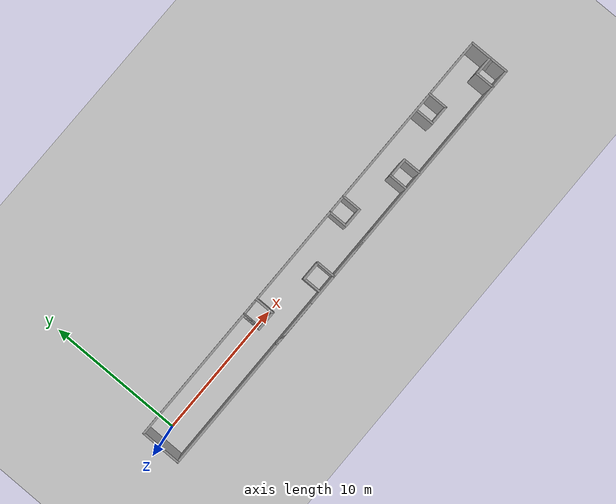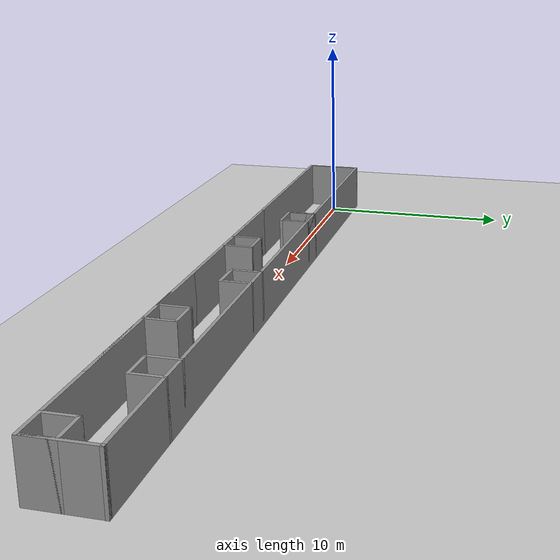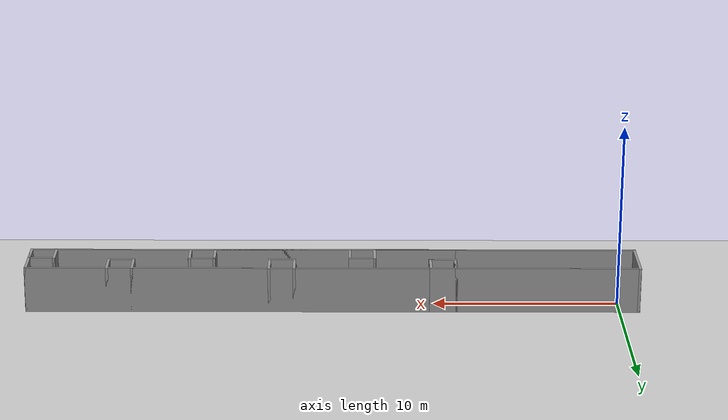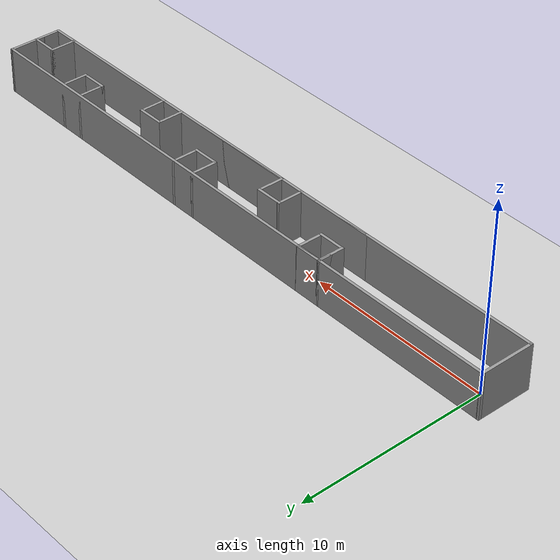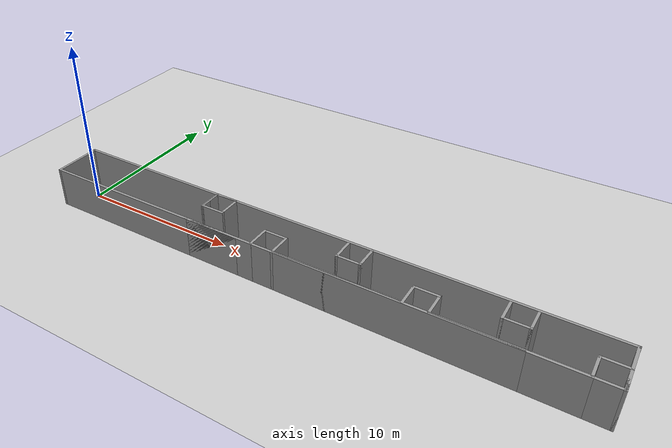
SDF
<sdf version="1.6">
 <world name="default">
  <light name="sun" type="directional">
   <pose>0 0 10 0 -0 0</pose>
   <diffuse>0.8 0.8 0.8 1</diffuse>
   <specular>0.1 0.1 0.1 1</specular>
   <attenuation>
    <range>1000</range>
    <constant>0.9</constant>
    <linear>0.01</linear>
    <quadratic>0.001</quadratic>
   </attenuation>
   <direction>-0.5 0.5 -1</direction>
  </light>
  <model name="ground_plane">
   <static>1</static>
   <link name="link">
    <collision name="collision">
     <geometry><plane><normal>0 0 1</normal><size>100 100</size></plane></geometry>
     <surface><friction><ode><mu>100</mu><mu2>50</mu2></ode></friction></surface>
    </collision>
    <visual name="visual">
     <cast_shadows>0</cast_shadows>
     <geometry><plane><normal>0 0 1</normal><size>100 100</size></plane></geometry>
     <material>
      <script><uri>file://media/materials/scripts/gazebo.material</uri><name>Gazebo/Grey</name></script>
     </material>
    </visual>
   </link>
  </model>
  <gravity>0 0 -9.8</gravity>
  <magnetic_field>6e-06 2.3e-05 -4.2e-05</magnetic_field>
  <atmosphere type="adiabatic"/>
  <physics name="default_physics" default="0" type="ode">
   <max_step_size>0.001</max_step_size>
   <real_time_factor>1</real_time_factor>
   <real_time_update_rate>1000</real_time_update_rate>
  </physics>
  <scene><ambient>0.4 0.4 0.4 1</ambient><background>0.7 0.7 0.7 1</background><shadows>1</shadows></scene>
  <spherical_coordinates>
   <surface_model>EARTH_WGS84</surface_model>
   <latitude_deg>0</latitude_deg>
   <longitude_deg>0</longitude_deg>
   <elevation>0</elevation>
   <heading_deg>0</heading_deg>
  </spherical_coordinates>
  <model name="big_s_map">
   <pose>15.456 -0.25331 0 0 -0 0</pose>
   <link name="Wall_0">
    <collision name="Wall_0_Collision">
     <geometry><box><size>3 0.15 2.5</size></box></geometry>
     <pose>0 0 1.25 0 -0 0</pose>
    </collision>
    <visual name="Wall_0_Visual">
     <pose>0 0 1.25 0 -0 0</pose>
     <geometry><box><size>3 0.15 2.5</size></box></geometry>
     <material>
      <script><uri>file://media/materials/scripts/gazebo.material</uri><name>Gazebo/Grey</name></script>
      <ambient>1 1 1 1</ambient>
     </material>
    </visual>
    <pose>-16.48 0 0 0 0 -1.5708</pose>
   </link>
   <link name="Wall_10">
    <collision name="Wall_10_Collision">
     <geometry><box><size>1.5 0.15 2.5</size></box></geometry>
     <pose>0 0 1.25 0 -0 0</pose>
    </collision>
    <visual name="Wall_10_Visual">
     <pose>0 0 1.25 0 -0 0</pose>
     <geometry><box><size>1.5 0.15 2.5</size></box></geometry>
     <material>
      <script><uri>file://media/materials/scripts/gazebo.material</uri><name>Gazebo/Grey</name></script>
      <ambient>1 1 1 1</ambient>
     </material>
    </visual>
    <pose>-6.63 0.75 0 0 0 -1.5708</pose>
   </link>
   <link name="Wall_2">
    <collision name="Wall_2_Collision">
     <geometry><box><size>10 0.15 2.5</size></box></geometry>
     <pose>0 0 1.25 0 -0 0</pose>
    </collision>
    <visual name="Wall_2_Visual">
     <pose>0 0 1.25 0 -0 0</pose>
     <geometry><box><size>10 0.15 2.5</size></box></geometry>
     <material>
      <script><uri>file://media/materials/scripts/gazebo.material</uri><name>Gazebo/Grey</name></script>
      <ambient>1 1 1 1</ambient>
     </material>
    </visual>
    <pose>-11.555 1.425 0 0 -0 0</pose>
   </link>
   <link name="Wall_22">
    <collision name="Wall_22_Collision">
     <geometry><box><size>3.5 0.15 2.5</size></box></geometry>
     <pose>0 0 1.25 0 -0 0</pose>
    </collision>
    <visual name="Wall_22_Visual">
     <pose>0 0 1.25 0 -0 0</pose>
     <geometry><box><size>3.5 0.15 2.5</size></box></geometry>
     <material>
      <script><uri>file://media/materials/scripts/gazebo.material</uri><name>Gazebo/Grey</name></script>
      <ambient>1 1 1 1</ambient>
     </material>
    </visual>
    <pose>-4.955 -1.425 0 0 -0 0</pose>
   </link>
   <link name="Wall_28">
    <collision name="Wall_28_Collision">
     <geometry><box><size>1.5 0.15 2.5</size></box></geometry>
     <pose>0 0 1.25 0 -0 0</pose>
    </collision>
    <visual name="Wall_28_Visual">
     <pose>0 0 1.25 0 -0 0</pose>
     <geometry><box><size>1.5 0.15 2.5</size></box></geometry>
     <material>
      <script><uri>file://media/materials/scripts/gazebo.material</uri><name>Gazebo/Grey</name></script>
      <ambient>1 1 1 1</ambient>
     </material>
    </visual>
    <pose>2.07 0.75 0 0 0 -1.5708</pose>
   </link>
   <link name="Wall_29">
    <collision name="Wall_29_Collision">
     <geometry><box><size>1.5 0.15 2.5</size></box></geometry>
     <pose>0 0 1.25 0 -0 0</pose>
    </collision>
    <visual name="Wall_29_Visual">
     <pose>0 0 1.25 0 -0 0</pose>
     <geometry><box><size>1.5 0.15 2.5</size></box></geometry>
     <material>
      <script><uri>file://media/materials/scripts/gazebo.material</uri><name>Gazebo/Grey</name></script>
      <ambient>1 1 1 1</ambient>
     </material>
    </visual>
    <pose>2.745 0.075 0 0 -0 0</pose>
   </link>
   <link name="Wall_30">
    <collision name="Wall_30_Collision">
     <geometry><box><size>1.5 0.15 2.5</size></box></geometry>
     <pose>0 0 1.25 0 -0 0</pose>
    </collision>
    <visual name="Wall_30_Visual">
     <pose>0 0 1.25 0 -0 0</pose>
     <geometry><box><size>1.5 0.15 2.5</size></box></geometry>
     <material>
      <script><uri>file://media/materials/scripts/gazebo.material</uri><name>Gazebo/Grey</name></script>
      <ambient>1 1 1 1</ambient>
     </material>
    </visual>
    <pose>3.42 0.75 0 0 -0 1.5708</pose>
   </link>
   <link name="Wall_32">
    <collision name="Wall_32_Collision">
     <geometry><box><size>1.5 0.15 2.5</size></box></geometry>
     <pose>0 0 1.25 0 -0 0</pose>
    </collision>
    <visual name="Wall_32_Visual">
     <pose>0 0 1.25 0 -0 0</pose>
     <geometry><box><size>1.5 0.15 2.5</size></box></geometry>
     <material>
      <script><uri>file://media/materials/scripts/gazebo.material</uri><name>Gazebo/Grey</name></script>
      <ambient>1 1 1 1</ambient>
     </material>
    </visual>
    <pose>10.77 0.75 0 0 0 -1.5708</pose>
   </link>
   <link name="Wall_33">
    <collision name="Wall_33_Collision">
     <geometry><box><size>1.5 0.15 2.5</size></box></geometry>
     <pose>0 0 1.25 0 -0 0</pose>
    </collision>
    <visual name="Wall_33_Visual">
     <pose>0 0 1.25 0 -0 0</pose>
     <geometry><box><size>1.5 0.15 2.5</size></box></geometry>
     <material>
      <script><uri>file://media/materials/scripts/gazebo.material</uri><name>Gazebo/Grey</name></script>
      <ambient>1 1 1 1</ambient>
     </material>
    </visual>
    <pose>11.445 0.075 0 0 -0 0</pose>
   </link>
   <link name="Wall_35">
    <collision name="Wall_35_Collision">
     <geometry><box><size>4.5 0.15 2.5</size></box></geometry>
     <pose>0 0 1.25 0 -0 0</pose>
    </collision>
    <visual name="Wall_35_Visual">
     <pose>0 0 1.25 0 -0 0</pose>
     <geometry><box><size>4.5 0.15 2.5</size></box></geometry>
     <material>
      <script><uri>file://media/materials/scripts/gazebo.material</uri><name>Gazebo/Grey</name></script>
      <ambient>1 1 1 1</ambient>
     </material>
    </visual>
    <pose>-4.455 -1.425 0 0 -0 0</pose>
   </link>
   <link name="Wall_36">
    <collision name="Wall_36_Collision">
     <geometry><box><size>1.5 0.15 2.5</size></box></geometry>
     <pose>0 0 1.25 0 -0 0</pose>
    </collision>
    <visual name="Wall_36_Visual">
     <pose>0 0 1.25 0 -0 0</pose>
     <geometry><box><size>1.5 0.15 2.5</size></box></geometry>
     <material>
      <script><uri>file://media/materials/scripts/gazebo.material</uri><name>Gazebo/Grey</name></script>
      <ambient>1 1 1 1</ambient>
     </material>
    </visual>
    <pose>-2.28 -0.75 0 0 -0 1.5708</pose>
   </link>
   <link name="Wall_37">
    <collision name="Wall_37_Collision">
     <geometry><box><size>1.5 0.15 2.5</size></box></geometry>
     <pose>0 0 1.25 0 -0 0</pose>
    </collision>
    <visual name="Wall_37_Visual">
     <pose>0 0 1.25 0 -0 0</pose>
     <geometry><box><size>1.5 0.15 2.5</size></box></geometry>
     <material>
      <script><uri>file://media/materials/scripts/gazebo.material</uri><name>Gazebo/Grey</name></script>
      <ambient>1 1 1 1</ambient>
     </material>
    </visual>
    <pose>-1.605 -0.075 0 0 -0 0</pose>
   </link>
   <link name="Wall_38">
    <collision name="Wall_38_Collision">
     <geometry><box><size>1.5 0.15 2.5</size></box></geometry>
     <pose>0 0 1.25 0 -0 0</pose>
    </collision>
    <visual name="Wall_38_Visual">
     <pose>0 0 1.25 0 -0 0</pose>
     <geometry><box><size>1.5 0.15 2.5</size></box></geometry>
     <material>
      <script><uri>file://media/materials/scripts/gazebo.material</uri><name>Gazebo/Grey</name></script>
      <ambient>1 1 1 1</ambient>
     </material>
    </visual>
    <pose>-0.93 -0.75 0 0 0 -1.5708</pose>
   </link>
   <link name="Wall_39">
    <collision name="Wall_39_Collision">
     <geometry><box><size>7.5 0.15 2.5</size></box></geometry>
     <pose>0 0 1.25 0 -0 0</pose>
    </collision>
    <visual name="Wall_39_Visual">
     <pose>0 0 1.25 0 -0 0</pose>
     <geometry><box><size>7.5 0.15 2.5</size></box></geometry>
     <material>
      <script><uri>file://media/materials/scripts/gazebo.material</uri><name>Gazebo/Grey</name></script>
      <ambient>1 1 1 1</ambient>
     </material>
    </visual>
    <pose>2.745 -1.425 0 0 -0 0</pose>
   </link>
   <link name="Wall_4">
    <collision name="Wall_4_Collision">
     <geometry><box><size>10 0.15 2.5</size></box></geometry>
     <pose>0 0 1.25 0 -0 0</pose>
    </collision>
    <visual name="Wall_4_Visual">
     <pose>0 0 1.25 0 -0 0</pose>
     <geometry><box><size>10 0.15 2.5</size></box></geometry>
     <material>
      <script><uri>file://media/materials/scripts/gazebo.material</uri><name>Gazebo/Grey</name></script>
      <ambient>1 1 1 1</ambient>
     </material>
    </visual>
    <pose>-11.555 -1.425 0 0 -0 3.14159</pose>
   </link>
   <link name="Wall_40">
    <collision name="Wall_40_Collision">
     <geometry><box><size>1.5 0.15 2.5</size></box></geometry>
     <pose>0 0 1.25 0 -0 0</pose>
    </collision>
    <visual name="Wall_40_Visual">
     <pose>0 0 1.25 0 -0 0</pose>
     <geometry><box><size>1.5 0.15 2.5</size></box></geometry>
     <material>
      <script><uri>file://media/materials/scripts/gazebo.material</uri><name>Gazebo/Grey</name></script>
      <ambient>1 1 1 1</ambient>
     </material>
    </visual>
    <pose>6.42 -0.75 0 0 -0 1.5708</pose>
   </link>
   <link name="Wall_41">
    <collision name="Wall_41_Collision">
     <geometry><box><size>1.5 0.15 2.5</size></box></geometry>
     <pose>0 0 1.25 0 -0 0</pose>
    </collision>
    <visual name="Wall_41_Visual">
     <pose>0 0 1.25 0 -0 0</pose>
     <geometry><box><size>1.5 0.15 2.5</size></box></geometry>
     <material>
      <script><uri>file://media/materials/scripts/gazebo.material</uri><name>Gazebo/Grey</name></script>
      <ambient>1 1 1 1</ambient>
     </material>
    </visual>
    <pose>7.095 -0.075 0 0 -0 0</pose>
   </link>
   <link name="Wall_42">
    <collision name="Wall_42_Collision">
     <geometry><box><size>1.5 0.15 2.5</size></box></geometry>
     <pose>0 0 1.25 0 -0 0</pose>
    </collision>
    <visual name="Wall_42_Visual">
     <pose>0 0 1.25 0 -0 0</pose>
     <geometry><box><size>1.5 0.15 2.5</size></box></geometry>
     <material>
      <script><uri>file://media/materials/scripts/gazebo.material</uri><name>Gazebo/Grey</name></script>
      <ambient>1 1 1 1</ambient>
     </material>
    </visual>
    <pose>7.77 -0.75 0 0 0 -1.5708</pose>
   </link>
   <link name="Wall_44">
    <collision name="Wall_44_Collision">
     <geometry><box><size>7.5 0.15 2.5</size></box></geometry>
     <pose>0 0 1.25 0 -0 0</pose>
    </collision>
    <visual name="Wall_44_Visual">
     <pose>0 0 1.25 0 -0 0</pose>
     <geometry><box><size>7.5 0.15 2.5</size></box></geometry>
     <material>
      <script><uri>file://media/materials/scripts/gazebo.material</uri><name>Gazebo/Grey</name></script>
      <ambient>1 1 1 1</ambient>
     </material>
    </visual>
    <pose>11.445 -1.425 0 0 -0 0</pose>
   </link>
   <link name="Wall_45">
    <collision name="Wall_45_Collision">
     <geometry><box><size>1.5 0.15 2.5</size></box></geometry>
     <pose>0 0 1.25 0 -0 0</pose>
    </collision>
    <visual name="Wall_45_Visual">
     <pose>0 0 1.25 0 -0 0</pose>
     <geometry><box><size>1.5 0.15 2.5</size></box></geometry>
     <material>
      <script><uri>file://media/materials/scripts/gazebo.material</uri><name>Gazebo/Grey</name></script>
      <ambient>1 1 1 1</ambient>
     </material>
    </visual>
    <pose>15.12 -0.75 0 0 -0 1.5708</pose>
   </link>
   <link name="Wall_46">
    <collision name="Wall_46_Collision">
     <geometry><box><size>1.5 0.15 2.5</size></box></geometry>
     <pose>0 0 1.25 0 -0 0</pose>
    </collision>
    <visual name="Wall_46_Visual">
     <pose>0 0 1.25 0 -0 0</pose>
     <geometry><box><size>1.5 0.15 2.5</size></box></geometry>
     <material>
      <script><uri>file://media/materials/scripts/gazebo.material</uri><name>Gazebo/Grey</name></script>
      <ambient>1 1 1 1</ambient>
     </material>
    </visual>
    <pose>15.795 -0.075 0 0 -0 0</pose>
   </link>
   <link name="Wall_47">
    <collision name="Wall_47_Collision">
     <geometry><box><size>1.5 0.15 2.5</size></box></geometry>
     <pose>0 0 1.25 0 -0 0</pose>
    </collision>
    <visual name="Wall_47_Visual">
     <pose>0 0 1.25 0 -0 0</pose>
     <geometry><box><size>1.5 0.15 2.5</size></box></geometry>
     <material>
      <script><uri>file://media/materials/scripts/gazebo.material</uri><name>Gazebo/Grey</name></script>
      <ambient>1 1 1 1</ambient>
     </material>
    </visual>
    <pose>16.47 -0.75 0 0 0 -1.5708</pose>
   </link>
   <link name="Wall_48">
    <collision name="Wall_48_Collision">
     <geometry><box><size>1.5 0.15 2.5</size></box></geometry>
     <pose>0 0 1.25 0 -0 0</pose>
    </collision>
    <visual name="Wall_48_Visual">
     <pose>0 0 1.25 0 -0 0</pose>
     <geometry><box><size>1.5 0.15 2.5</size></box></geometry>
     <material>
      <script><uri>file://media/materials/scripts/gazebo.material</uri><name>Gazebo/Grey</name></script>
      <ambient>1 1 1 1</ambient>
     </material>
    </visual>
    <pose>15.795 -1.425 0 0 -0 3.14159</pose>
   </link>
   <link name="Wall_52">
    <collision name="Wall_52_Collision">
     <geometry><box><size>3 0.15 2.5</size></box></geometry>
     <pose>0 0 1.25 0 -0 0</pose>
    </collision>
    <visual name="Wall_52_Visual">
     <pose>0 0 1.25 0 -0 0</pose>
     <geometry><box><size>3 0.15 2.5</size></box></geometry>
     <material>
      <script><uri>file://media/materials/scripts/gazebo.material</uri><name>Gazebo/Grey</name></script>
      <ambient>1 1 1 1</ambient>
     </material>
    </visual>
    <pose>16.47 0 0 0 -0 1.5708</pose>
   </link>
   <link name="Wall_57">
    <collision name="Wall_57_Collision">
     <geometry><box><size>23.25 0.15 2.5</size></box></geometry>
     <pose>0 0 1.25 0 -0 0</pose>
    </collision>
    <visual name="Wall_57_Visual">
     <pose>0 0 1.25 0 -0 0</pose>
     <geometry><box><size>23.25 0.15 2.5</size></box></geometry>
     <material>
      <script><uri>file://media/materials/scripts/gazebo.material</uri><name>Gazebo/Grey</name></script>
      <ambient>1 1 1 1</ambient>
     </material>
    </visual>
    <pose>4.92 1.425 0 0 -0 0</pose>
   </link>
   <link name="Wall_58">
    <collision name="Wall_58_Collision">
     <geometry><box><size>0.16 0.15 2.5</size></box></geometry>
     <pose>0 0 1.25 0 -0 0</pose>
    </collision>
    <visual name="Wall_58_Visual">
     <pose>0 0 1.25 0 -0 0</pose>
     <geometry><box><size>0.16 0.15 2.5</size></box></geometry>
     <material>
      <script><uri>file://media/materials/scripts/gazebo.material</uri><name>Gazebo/Grey</name></script>
      <ambient>0 0 0 0</ambient>
     </material>
    </visual>
    <pose>16.475 1.425 0 0 -0 0</pose>
   </link>
   <link name="Wall_59">
    <collision name="Wall_59_Collision">
     <geometry><box><size>1.5 0.15 2.5</size></box></geometry>
     <pose>0 0 1.25 0 -0 0</pose>
    </collision>
    <visual name="Wall_59_Visual">
     <pose>0 0 1.25 0 -0 0</pose>
     <geometry><box><size>1.5 0.15 2.5</size></box></geometry>
     <material>
      <script><uri>file://media/materials/scripts/gazebo.material</uri><name>Gazebo/Grey</name></script>
      <ambient>1 1 1 1</ambient>
     </material>
    </visual>
    <pose>-5.955 1.425 0 0 -0 0</pose>
   </link>
   <link name="Wall_60">
    <collision name="Wall_60_Collision">
     <geometry><box><size>1.5 0.15 2.5</size></box></geometry>
     <pose>0 0 1.25 0 -0 0</pose>
    </collision>
    <visual name="Wall_60_Visual">
     <pose>0 0 1.25 0 -0 0</pose>
     <geometry><box><size>1.5 0.15 2.5</size></box></geometry>
     <material>
      <script><uri>file://media/materials/scripts/gazebo.material</uri><name>Gazebo/Grey</name></script>
      <ambient>1 1 1 1</ambient>
     </material>
    </visual>
    <pose>-5.28 0.75 0 0 0 -1.5708</pose>
   </link>
   <link name="Wall_61">
    <collision name="Wall_61_Collision">
     <geometry><box><size>1.5 0.15 2.5</size></box></geometry>
     <pose>0 0 1.25 0 -0 0</pose>
    </collision>
    <visual name="Wall_61_Visual">
     <pose>0 0 1.25 0 -0 0</pose>
     <geometry><box><size>1.5 0.15 2.5</size></box></geometry>
     <material>
      <script><uri>file://media/materials/scripts/gazebo.material</uri><name>Gazebo/Grey</name></script>
      <ambient>1 1 1 1</ambient>
     </material>
    </visual>
    <pose>-5.955 0.075 0 0 -0 3.14159</pose>
   </link>
   <link name="Wall_62">
    <collision name="Wall_62_Collision">
     <geometry><box><size>1.5 0.15 2.5</size></box></geometry>
     <pose>0 0 1.25 0 -0 0</pose>
    </collision>
    <visual name="Wall_62_Visual">
     <pose>0 0 1.25 0 -0 0</pose>
     <geometry><box><size>1.5 0.15 2.5</size></box></geometry>
     <material>
      <script><uri>file://media/materials/scripts/gazebo.material</uri><name>Gazebo/Grey</name></script>
      <ambient>1 1 1 1</ambient>
     </material>
    </visual>
    <pose>-6.63 0.75 0 0 -0 1.5708</pose>
   </link>
   <link name="Wall_64">
    <collision name="Wall_64_Collision">
     <geometry><box><size>1.5 0.15 2.5</size></box></geometry>
     <pose>0 0 1.25 0 -0 0</pose>
    </collision>
    <visual name="Wall_64_Visual">
     <pose>0 0 1.25 0 -0 0</pose>
     <geometry><box><size>1.5 0.15 2.5</size></box></geometry>
     <material>
      <script><uri>file://media/materials/scripts/gazebo.material</uri><name>Gazebo/Grey</name></script>
      <ambient>1 1 1 1</ambient>
     </material>
    </visual>
    <pose>12.12 0.75 0 0 -0 1.5708</pose>
   </link>
   <link name="Wall_8">
    <collision name="Wall_8_Collision">
     <geometry><box><size>19.0532 0.15 2.5</size></box></geometry>
     <pose>0 0 1.25 0 -0 0</pose>
    </collision>
    <visual name="Wall_8_Visual">
     <pose>0 0 1.25 0 -0 0</pose>
     <geometry><box><size>19.0532 0.15 2.5</size></box></geometry>
     <material>
      <script><uri>file://media/materials/scripts/gazebo.material</uri><name>Gazebo/Grey</name></script>
      <ambient>1 1 1 1</ambient>
     </material>
    </visual>
    <pose>2.8216 -1.425 0 0 -0 3.14159</pose>
   </link>
   <static>1</static>
  </model>
 </world>
</sdf>
